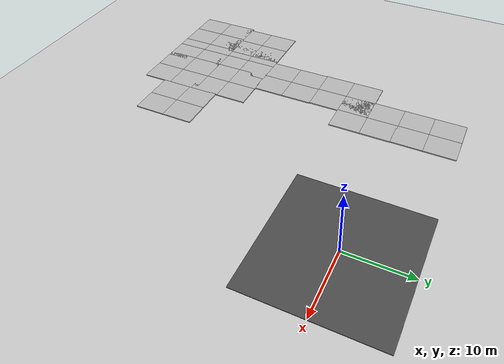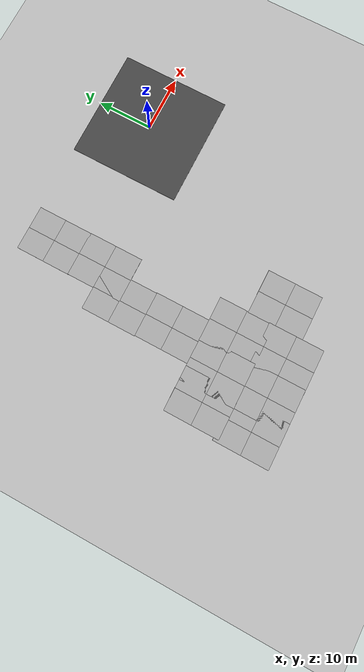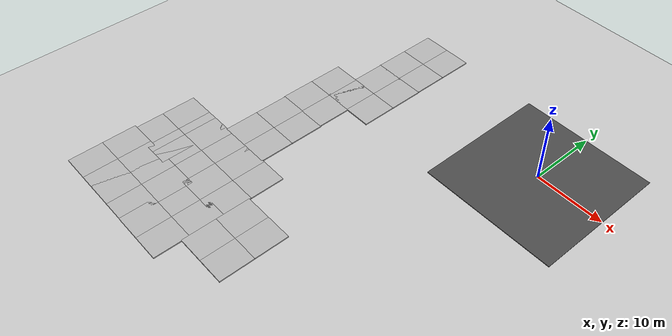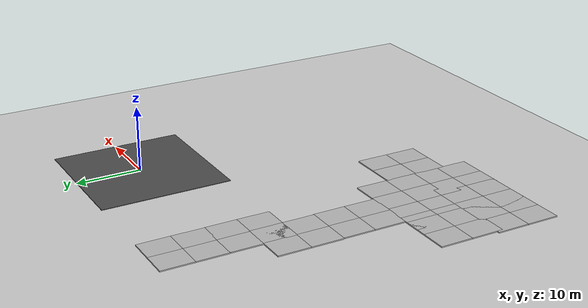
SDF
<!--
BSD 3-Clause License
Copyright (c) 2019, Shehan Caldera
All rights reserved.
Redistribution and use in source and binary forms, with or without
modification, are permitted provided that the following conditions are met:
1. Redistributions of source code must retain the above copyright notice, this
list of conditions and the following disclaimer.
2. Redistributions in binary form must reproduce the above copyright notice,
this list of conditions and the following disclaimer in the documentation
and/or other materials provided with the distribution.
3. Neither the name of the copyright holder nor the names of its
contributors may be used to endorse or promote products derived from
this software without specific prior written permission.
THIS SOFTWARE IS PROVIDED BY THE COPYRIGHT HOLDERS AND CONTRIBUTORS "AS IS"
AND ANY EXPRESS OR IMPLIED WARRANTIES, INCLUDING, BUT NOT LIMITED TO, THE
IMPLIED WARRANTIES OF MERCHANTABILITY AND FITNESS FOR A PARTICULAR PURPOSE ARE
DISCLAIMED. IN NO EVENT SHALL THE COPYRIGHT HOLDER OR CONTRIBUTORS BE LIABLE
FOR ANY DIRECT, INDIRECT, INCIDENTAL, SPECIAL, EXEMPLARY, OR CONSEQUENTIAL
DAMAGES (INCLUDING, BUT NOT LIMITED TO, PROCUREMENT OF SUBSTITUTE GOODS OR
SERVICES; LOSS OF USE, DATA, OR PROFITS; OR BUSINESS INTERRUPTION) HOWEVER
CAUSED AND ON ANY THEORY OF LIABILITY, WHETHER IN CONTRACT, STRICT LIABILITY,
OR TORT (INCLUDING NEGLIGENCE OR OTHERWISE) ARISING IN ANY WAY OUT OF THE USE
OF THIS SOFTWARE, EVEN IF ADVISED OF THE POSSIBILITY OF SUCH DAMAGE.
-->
<sdf version="1.6">
 <world name="default">
  <model name="ground_plane">
   <static>1</static>
   <link name="link">
    <collision name="collision">
     <geometry><plane><normal>0 0 1</normal><size>100 100</size></plane></geometry>
     <surface><friction><ode><mu>100</mu><mu2>50</mu2></ode></friction></surface>
    </collision>
    <visual name="visual">
     <cast_shadows>0</cast_shadows>
     <geometry><plane><normal>0 0 1</normal><size>100 100</size></plane></geometry>
     <material>
      <script><uri>file://media/materials/scripts/gazebo.material</uri><name>Gazebo/Grey</name></script>
     </material>
    </visual>
   </link>
  </model>
  <model name="asphalt_plane">
   <static>1</static>
   <link name="link">
    <collision name="collision"><geometry><box><size>20 20 0.1</size></box></geometry></collision>
    <visual name="visual">
     <cast_shadows>0</cast_shadows>
     <geometry><box><size>20 20 0.1</size></box></geometry>
     <material>
      <script>
       <uri>model://asphalt_plane/materials/scripts</uri>
       <uri>model://asphalt_plane/materials/textures</uri>
       <name>vrc/asphalt</name>
      </script>
     </material>
    </visual>
   </link>
   <pose>0.101082 -0.112041 0 0 -0 0</pose>
  </model>
  <model name="mud_box_1">
   <static>1</static>
   <link name="link">
    <collision name="collision"><geometry><box><size>8 10 0.2</size></box></geometry></collision>
    <visual name="visual_1">
     <pose>-2 2.5 0 0 -0 0</pose>
     <cast_shadows>0</cast_shadows>
     <geometry><box><size>4 5 0.2</size></box></geometry>
     <material>
      <script>
       <uri>model://mud_box/materials/scripts</uri>
       <uri>model://mud_box/materials/textures</uri>
       <name>vrc/mud</name>
      </script>
     </material>
    </visual>
    <visual name="visual_2">
     <pose>2 2.5 0 0 -0 0</pose>
     <cast_shadows>0</cast_shadows>
     <geometry><box><size>4 5 0.2</size></box></geometry>
     <material>
      <script>
       <uri>model://mud_box/materials/scripts</uri>
       <uri>model://mud_box/materials/textures</uri>
       <name>vrc/mud</name>
      </script>
     </material>
    </visual>
    <visual name="visual_3">
     <pose>2 -2.5 0 0 -0 0</pose>
     <cast_shadows>0</cast_shadows>
     <geometry><box><size>4 5 0.2</size></box></geometry>
     <material>
      <script>
       <uri>model://mud_box/materials/scripts</uri>
       <uri>model://mud_box/materials/textures</uri>
       <name>vrc/mud</name>
      </script>
     </material>
    </visual>
    <visual name="visual_4">
     <pose>-2 -2.5 0 0 -0 0</pose>
     <cast_shadows>0</cast_shadows>
     <geometry><box><size>4 5 0.2</size></box></geometry>
     <material>
      <script>
       <uri>model://mud_box/materials/scripts</uri>
       <uri>model://mud_box/materials/textures</uri>
       <name>vrc/mud</name>
      </script>
     </material>
    </visual>
   </link>
   <pose>-38.2715 -38.9821 0 0 -0 0</pose>
  </model>
  <model name="mud_box_1_clone">
   <static>1</static>
   <link name="link">
    <collision name="collision"><geometry><box><size>8 10 0.2</size></box></geometry></collision>
    <visual name="visual_1">
     <pose>-2 2.5 0 0 -0 0</pose>
     <cast_shadows>0</cast_shadows>
     <geometry><box><size>4 5 0.2</size></box></geometry>
     <material>
      <script>
       <uri>model://mud_box/materials/scripts</uri>
       <uri>model://mud_box/materials/textures</uri>
       <name>vrc/mud</name>
      </script>
     </material>
    </visual>
    <visual name="visual_2">
     <pose>2 2.5 0 0 -0 0</pose>
     <cast_shadows>0</cast_shadows>
     <geometry><box><size>4 5 0.2</size></box></geometry>
     <material>
      <script>
       <uri>model://mud_box/materials/scripts</uri>
       <uri>model://mud_box/materials/textures</uri>
       <name>vrc/mud</name>
      </script>
     </material>
    </visual>
    <visual name="visual_3">
     <pose>2 -2.5 0 0 -0 0</pose>
     <cast_shadows>0</cast_shadows>
     <geometry><box><size>4 5 0.2</size></box></geometry>
     <material>
      <script>
       <uri>model://mud_box/materials/scripts</uri>
       <uri>model://mud_box/materials/textures</uri>
       <name>vrc/mud</name>
      </script>
     </material>
    </visual>
    <visual name="visual_4">
     <pose>-2 -2.5 0 0 -0 0</pose>
     <cast_shadows>0</cast_shadows>
     <geometry><box><size>4 5 0.2</size></box></geometry>
     <material>
      <script>
       <uri>model://mud_box/materials/scripts</uri>
       <uri>model://mud_box/materials/textures</uri>
       <name>vrc/mud</name>
      </script>
     </material>
    </visual>
   </link>
   <pose>-37.8344 -29.8859 0 0 -0 0</pose>
  </model>
  <model name="mud_box_1_clone_0">
   <static>1</static>
   <link name="link">
    <collision name="collision"><geometry><box><size>8 10 0.2</size></box></geometry></collision>
    <visual name="visual_1">
     <pose>-2 2.5 0 0 -0 0</pose>
     <cast_shadows>0</cast_shadows>
     <geometry><box><size>4 5 0.2</size></box></geometry>
     <material>
      <script>
       <uri>model://mud_box/materials/scripts</uri>
       <uri>model://mud_box/materials/textures</uri>
       <name>vrc/mud</name>
      </script>
     </material>
    </visual>
    <visual name="visual_2">
     <pose>2 2.5 0 0 -0 0</pose>
     <cast_shadows>0</cast_shadows>
     <geometry><box><size>4 5 0.2</size></box></geometry>
     <material>
      <script>
       <uri>model://mud_box/materials/scripts</uri>
       <uri>model://mud_box/materials/textures</uri>
       <name>vrc/mud</name>
      </script>
     </material>
    </visual>
    <visual name="visual_3">
     <pose>2 -2.5 0 0 -0 0</pose>
     <cast_shadows>0</cast_shadows>
     <geometry><box><size>4 5 0.2</size></box></geometry>
     <material>
      <script>
       <uri>model://mud_box/materials/scripts</uri>
       <uri>model://mud_box/materials/textures</uri>
       <name>vrc/mud</name>
      </script>
     </material>
    </visual>
    <visual name="visual_4">
     <pose>-2 -2.5 0 0 -0 0</pose>
     <cast_shadows>0</cast_shadows>
     <geometry><box><size>4 5 0.2</size></box></geometry>
     <material>
      <script>
       <uri>model://mud_box/materials/scripts</uri>
       <uri>model://mud_box/materials/textures</uri>
       <name>vrc/mud</name>
      </script>
     </material>
    </visual>
   </link>
   <pose>-32.3465 -29.878 0 0 -0 0</pose>
  </model>
  <model name="mud_box_1_clone_1">
   <static>1</static>
   <link name="link">
    <collision name="collision"><geometry><box><size>8 10 0.2</size></box></geometry></collision>
    <visual name="visual_1">
     <pose>-2 2.5 0 0 -0 0</pose>
     <cast_shadows>0</cast_shadows>
     <geometry><box><size>4 5 0.2</size></box></geometry>
     <material>
      <script>
       <uri>model://mud_box/materials/scripts</uri>
       <uri>model://mud_box/materials/textures</uri>
       <name>vrc/mud</name>
      </script>
     </material>
    </visual>
    <visual name="visual_2">
     <pose>2 2.5 0 0 -0 0</pose>
     <cast_shadows>0</cast_shadows>
     <geometry><box><size>4 5 0.2</size></box></geometry>
     <material>
      <script>
       <uri>model://mud_box/materials/scripts</uri>
       <uri>model://mud_box/materials/textures</uri>
       <name>vrc/mud</name>
      </script>
     </material>
    </visual>
    <visual name="visual_3">
     <pose>2 -2.5 0 0 -0 0</pose>
     <cast_shadows>0</cast_shadows>
     <geometry><box><size>4 5 0.2</size></box></geometry>
     <material>
      <script>
       <uri>model://mud_box/materials/scripts</uri>
       <uri>model://mud_box/materials/textures</uri>
       <name>vrc/mud</name>
      </script>
     </material>
    </visual>
    <visual name="visual_4">
     <pose>-2 -2.5 0 0 -0 0</pose>
     <cast_shadows>0</cast_shadows>
     <geometry><box><size>4 5 0.2</size></box></geometry>
     <material>
      <script>
       <uri>model://mud_box/materials/scripts</uri>
       <uri>model://mud_box/materials/textures</uri>
       <name>vrc/mud</name>
      </script>
     </material>
    </visual>
   </link>
   <pose>-32.2902 -38.9747 0 0 -0 0</pose>
  </model>
  <model name="mud_box_1_clone_2">
   <static>1</static>
   <link name="link">
    <collision name="collision"><geometry><box><size>8 10 0.2</size></box></geometry></collision>
    <visual name="visual_1">
     <pose>-2 2.5 0 0 -0 0</pose>
     <cast_shadows>0</cast_shadows>
     <geometry><box><size>4 5 0.2</size></box></geometry>
     <material>
      <script>
       <uri>model://mud_box/materials/scripts</uri>
       <uri>model://mud_box/materials/textures</uri>
       <name>vrc/mud</name>
      </script>
     </material>
    </visual>
    <visual name="visual_2">
     <pose>2 2.5 0 0 -0 0</pose>
     <cast_shadows>0</cast_shadows>
     <geometry><box><size>4 5 0.2</size></box></geometry>
     <material>
      <script>
       <uri>model://mud_box/materials/scripts</uri>
       <uri>model://mud_box/materials/textures</uri>
       <name>vrc/mud</name>
      </script>
     </material>
    </visual>
    <visual name="visual_3">
     <pose>2 -2.5 0 0 -0 0</pose>
     <cast_shadows>0</cast_shadows>
     <geometry><box><size>4 5 0.2</size></box></geometry>
     <material>
      <script>
       <uri>model://mud_box/materials/scripts</uri>
       <uri>model://mud_box/materials/textures</uri>
       <name>vrc/mud</name>
      </script>
     </material>
    </visual>
    <visual name="visual_4">
     <pose>-2 -2.5 0 0 -0 0</pose>
     <cast_shadows>0</cast_shadows>
     <geometry><box><size>4 5 0.2</size></box></geometry>
     <material>
      <script>
       <uri>model://mud_box/materials/scripts</uri>
       <uri>model://mud_box/materials/textures</uri>
       <name>vrc/mud</name>
      </script>
     </material>
    </visual>
   </link>
   <pose>-25.1879 -38.9993 0 0 -0 0</pose>
  </model>
  <model name="mud_box_1_clone_3">
   <static>1</static>
   <link name="link">
    <collision name="collision"><geometry><box><size>8 10 0.2</size></box></geometry></collision>
    <visual name="visual_1">
     <pose>-2 2.5 0 0 -0 0</pose>
     <cast_shadows>0</cast_shadows>
     <geometry><box><size>4 5 0.2</size></box></geometry>
     <material>
      <script>
       <uri>model://mud_box/materials/scripts</uri>
       <uri>model://mud_box/materials/textures</uri>
       <name>vrc/mud</name>
      </script>
     </material>
    </visual>
    <visual name="visual_2">
     <pose>2 2.5 0 0 -0 0</pose>
     <cast_shadows>0</cast_shadows>
     <geometry><box><size>4 5 0.2</size></box></geometry>
     <material>
      <script>
       <uri>model://mud_box/materials/scripts</uri>
       <uri>model://mud_box/materials/textures</uri>
       <name>vrc/mud</name>
      </script>
     </material>
    </visual>
    <visual name="visual_3">
     <pose>2 -2.5 0 0 -0 0</pose>
     <cast_shadows>0</cast_shadows>
     <geometry><box><size>4 5 0.2</size></box></geometry>
     <material>
      <script>
       <uri>model://mud_box/materials/scripts</uri>
       <uri>model://mud_box/materials/textures</uri>
       <name>vrc/mud</name>
      </script>
     </material>
    </visual>
    <visual name="visual_4">
     <pose>-2 -2.5 0 0 -0 0</pose>
     <cast_shadows>0</cast_shadows>
     <geometry><box><size>4 5 0.2</size></box></geometry>
     <material>
      <script>
       <uri>model://mud_box/materials/scripts</uri>
       <uri>model://mud_box/materials/textures</uri>
       <name>vrc/mud</name>
      </script>
     </material>
    </visual>
   </link>
   <pose>-25.1987 -29.8666 0 0 -0 0</pose>
  </model>
  <model name="mud_box">
   <static>1</static>
   <link name="link">
    <collision name="collision"><geometry><box><size>8 10 0.2</size></box></geometry></collision>
    <visual name="visual_1">
     <pose>-2 2.5 0 0 -0 0</pose>
     <cast_shadows>0</cast_shadows>
     <geometry><box><size>4 5 0.2</size></box></geometry>
     <material>
      <script>
       <uri>model://mud_box/materials/scripts</uri>
       <uri>model://mud_box/materials/textures</uri>
       <name>vrc/mud</name>
      </script>
     </material>
    </visual>
    <visual name="visual_2">
     <pose>2 2.5 0 0 -0 0</pose>
     <cast_shadows>0</cast_shadows>
     <geometry><box><size>4 5 0.2</size></box></geometry>
     <material>
      <script>
       <uri>model://mud_box/materials/scripts</uri>
       <uri>model://mud_box/materials/textures</uri>
       <name>vrc/mud</name>
      </script>
     </material>
    </visual>
    <visual name="visual_3">
     <pose>2 -2.5 0 0 -0 0</pose>
     <cast_shadows>0</cast_shadows>
     <geometry><box><size>4 5 0.2</size></box></geometry>
     <material>
      <script>
       <uri>model://mud_box/materials/scripts</uri>
       <uri>model://mud_box/materials/textures</uri>
       <name>vrc/mud</name>
      </script>
     </material>
    </visual>
    <visual name="visual_4">
     <pose>-2 -2.5 0 0 -0 0</pose>
     <cast_shadows>0</cast_shadows>
     <geometry><box><size>4 5 0.2</size></box></geometry>
     <material>
      <script>
       <uri>model://mud_box/materials/scripts</uri>
       <uri>model://mud_box/materials/textures</uri>
       <name>vrc/mud</name>
      </script>
     </material>
    </visual>
   </link>
   <pose>-17.3113 -35.1015 0 0 -0 0</pose>
  </model>
  <model name="mud_box_clone_2">
   <static>1</static>
   <link name="link">
    <collision name="collision"><geometry><box><size>8 10 0.2</size></box></geometry></collision>
    <visual name="visual_1">
     <pose>-2 2.5 0 0 -0 0</pose>
     <cast_shadows>0</cast_shadows>
     <geometry><box><size>4 5 0.2</size></box></geometry>
     <material>
      <script>
       <uri>model://mud_box/materials/scripts</uri>
       <uri>model://mud_box/materials/textures</uri>
       <name>vrc/mud</name>
      </script>
     </material>
    </visual>
    <visual name="visual_2">
     <pose>2 2.5 0 0 -0 0</pose>
     <cast_shadows>0</cast_shadows>
     <geometry><box><size>4 5 0.2</size></box></geometry>
     <material>
      <script>
       <uri>model://mud_box/materials/scripts</uri>
       <uri>model://mud_box/materials/textures</uri>
       <name>vrc/mud</name>
      </script>
     </material>
    </visual>
    <visual name="visual_3">
     <pose>2 -2.5 0 0 -0 0</pose>
     <cast_shadows>0</cast_shadows>
     <geometry><box><size>4 5 0.2</size></box></geometry>
     <material>
      <script>
       <uri>model://mud_box/materials/scripts</uri>
       <uri>model://mud_box/materials/textures</uri>
       <name>vrc/mud</name>
      </script>
     </material>
    </visual>
    <visual name="visual_4">
     <pose>-2 -2.5 0 0 -0 0</pose>
     <cast_shadows>0</cast_shadows>
     <geometry><box><size>4 5 0.2</size></box></geometry>
     <material>
      <script>
       <uri>model://mud_box/materials/scripts</uri>
       <uri>model://mud_box/materials/textures</uri>
       <name>vrc/mud</name>
      </script>
     </material>
    </visual>
   </link>
   <pose>-29.501 -20.0035 0 0 -0 0</pose>
  </model>
  <model name="mud_box_clone_3">
   <static>1</static>
   <link name="link">
    <collision name="collision"><geometry><box><size>8 10 0.2</size></box></geometry></collision>
    <visual name="visual_1">
     <pose>-2 2.5 0 0 -0 0</pose>
     <cast_shadows>0</cast_shadows>
     <geometry><box><size>4 5 0.2</size></box></geometry>
     <material>
      <script>
       <uri>model://mud_box/materials/scripts</uri>
       <uri>model://mud_box/materials/textures</uri>
       <name>vrc/mud</name>
      </script>
     </material>
    </visual>
    <visual name="visual_2">
     <pose>2 2.5 0 0 -0 0</pose>
     <cast_shadows>0</cast_shadows>
     <geometry><box><size>4 5 0.2</size></box></geometry>
     <material>
      <script>
       <uri>model://mud_box/materials/scripts</uri>
       <uri>model://mud_box/materials/textures</uri>
       <name>vrc/mud</name>
      </script>
     </material>
    </visual>
    <visual name="visual_3">
     <pose>2 -2.5 0 0 -0 0</pose>
     <cast_shadows>0</cast_shadows>
     <geometry><box><size>4 5 0.2</size></box></geometry>
     <material>
      <script>
       <uri>model://mud_box/materials/scripts</uri>
       <uri>model://mud_box/materials/textures</uri>
       <name>vrc/mud</name>
      </script>
     </material>
    </visual>
    <visual name="visual_4">
     <pose>-2 -2.5 0 0 -0 0</pose>
     <cast_shadows>0</cast_shadows>
     <geometry><box><size>4 5 0.2</size></box></geometry>
     <material>
      <script>
       <uri>model://mud_box/materials/scripts</uri>
       <uri>model://mud_box/materials/textures</uri>
       <name>vrc/mud</name>
      </script>
     </material>
    </visual>
   </link>
   <pose>-29.5985 -10.0859 0 0 -0 0</pose>
  </model>
  <model name="mud_box_clone_4">
   <static>1</static>
   <link name="link">
    <collision name="collision"><geometry><box><size>8 10 0.2</size></box></geometry></collision>
    <visual name="visual_1">
     <pose>-2 2.5 0 0 -0 0</pose>
     <cast_shadows>0</cast_shadows>
     <geometry><box><size>4 5 0.2</size></box></geometry>
     <material>
      <script>
       <uri>model://mud_box/materials/scripts</uri>
       <uri>model://mud_box/materials/textures</uri>
       <name>vrc/mud</name>
      </script>
     </material>
    </visual>
    <visual name="visual_2">
     <pose>2 2.5 0 0 -0 0</pose>
     <cast_shadows>0</cast_shadows>
     <geometry><box><size>4 5 0.2</size></box></geometry>
     <material>
      <script>
       <uri>model://mud_box/materials/scripts</uri>
       <uri>model://mud_box/materials/textures</uri>
       <name>vrc/mud</name>
      </script>
     </material>
    </visual>
    <visual name="visual_3">
     <pose>2 -2.5 0 0 -0 0</pose>
     <cast_shadows>0</cast_shadows>
     <geometry><box><size>4 5 0.2</size></box></geometry>
     <material>
      <script>
       <uri>model://mud_box/materials/scripts</uri>
       <uri>model://mud_box/materials/textures</uri>
       <name>vrc/mud</name>
      </script>
     </material>
    </visual>
    <visual name="visual_4">
     <pose>-2 -2.5 0 0 -0 0</pose>
     <cast_shadows>0</cast_shadows>
     <geometry><box><size>4 5 0.2</size></box></geometry>
     <material>
      <script>
       <uri>model://mud_box/materials/scripts</uri>
       <uri>model://mud_box/materials/textures</uri>
       <name>vrc/mud</name>
      </script>
     </material>
    </visual>
   </link>
   <pose>-25.7384 -5.14281 0 0 -0 0</pose>
  </model>
  <model name="mud_box_clone_5">
   <static>1</static>
   <link name="link">
    <collision name="collision"><geometry><box><size>8 10 0.2</size></box></geometry></collision>
    <visual name="visual_1">
     <pose>-2 2.5 0 0 -0 0</pose>
     <cast_shadows>0</cast_shadows>
     <geometry><box><size>4 5 0.2</size></box></geometry>
     <material>
      <script>
       <uri>model://mud_box/materials/scripts</uri>
       <uri>model://mud_box/materials/textures</uri>
       <name>vrc/mud</name>
      </script>
     </material>
    </visual>
    <visual name="visual_2">
     <pose>2 2.5 0 0 -0 0</pose>
     <cast_shadows>0</cast_shadows>
     <geometry><box><size>4 5 0.2</size></box></geometry>
     <material>
      <script>
       <uri>model://mud_box/materials/scripts</uri>
       <uri>model://mud_box/materials/textures</uri>
       <name>vrc/mud</name>
      </script>
     </material>
    </visual>
    <visual name="visual_3">
     <pose>2 -2.5 0 0 -0 0</pose>
     <cast_shadows>0</cast_shadows>
     <geometry><box><size>4 5 0.2</size></box></geometry>
     <material>
      <script>
       <uri>model://mud_box/materials/scripts</uri>
       <uri>model://mud_box/materials/textures</uri>
       <name>vrc/mud</name>
      </script>
     </material>
    </visual>
    <visual name="visual_4">
     <pose>-2 -2.5 0 0 -0 0</pose>
     <cast_shadows>0</cast_shadows>
     <geometry><box><size>4 5 0.2</size></box></geometry>
     <material>
      <script>
       <uri>model://mud_box/materials/scripts</uri>
       <uri>model://mud_box/materials/textures</uri>
       <name>vrc/mud</name>
      </script>
     </material>
    </visual>
   </link>
   <pose>-25.781 4.71655 0 0 -0 0</pose>
  </model>
 </world>
</sdf>
